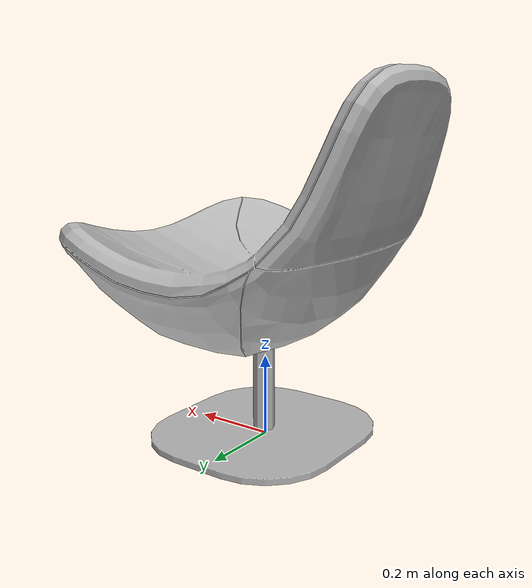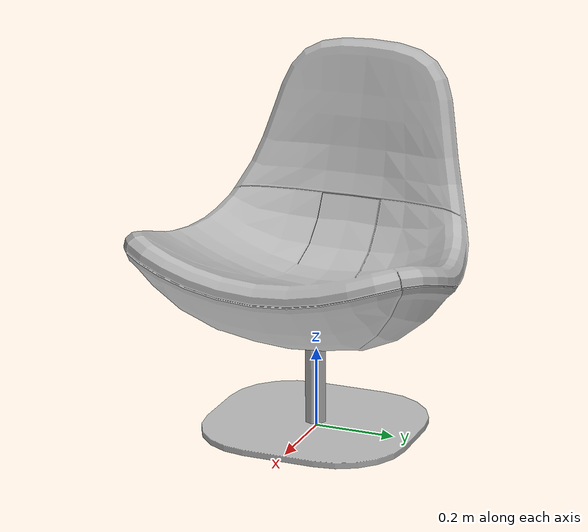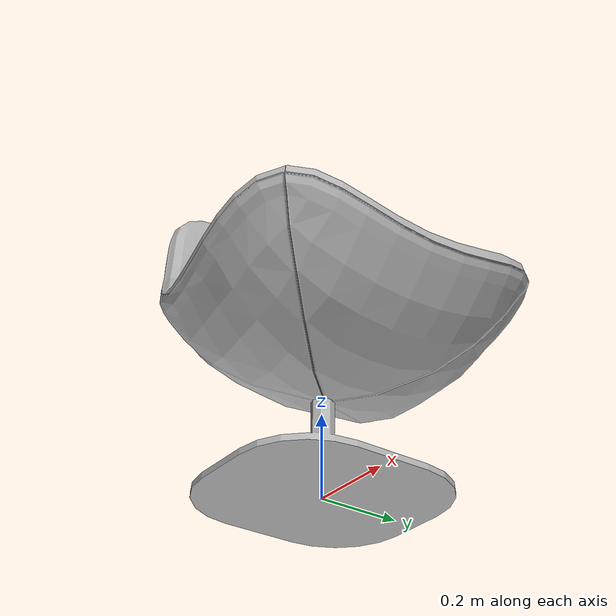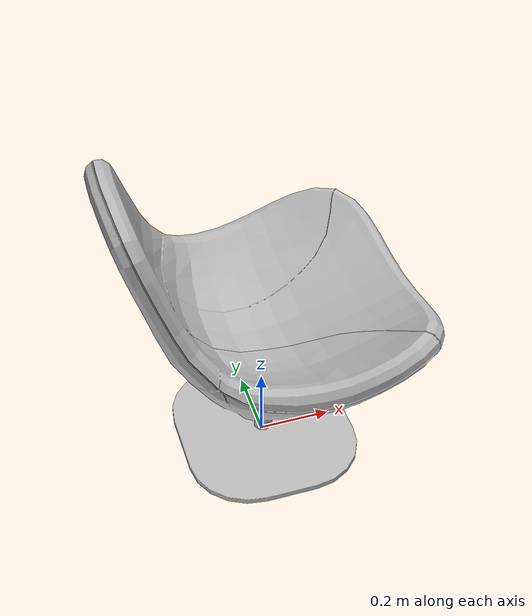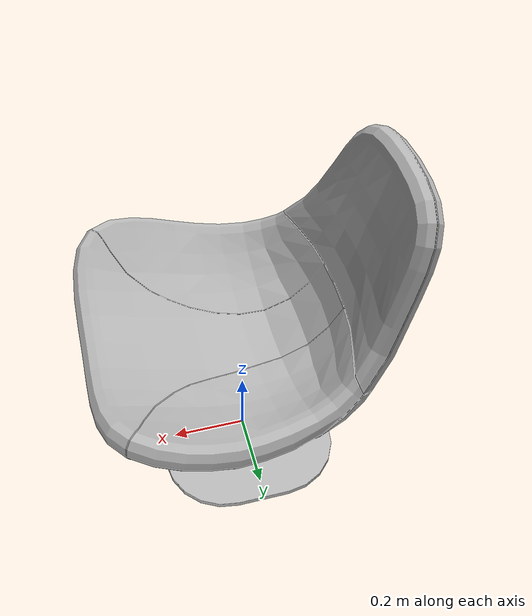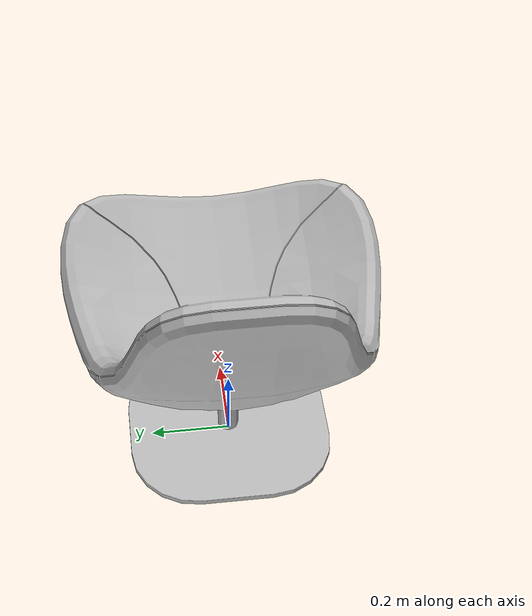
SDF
<?xml version='1.0'?>
<sdf version='1.4'>
  <model name='s__814'>
    <pose>0 0 0 0 0 0</pose>
    <static>true</static>
    <link name='link'>
      <collision name='collision'>
        <pose>0 0 0 0 0 0</pose>
        <geometry>
          <box>
            <size>0.79 0.78 2</size>
          </box>
        </geometry>
      </collision>
      <visual name='visual'>
        <pose>0 0 0 0 0 0</pose>
        <geometry>
          <mesh><uri>model://s__814/s__814.dae</uri></mesh>
        </geometry>
      </visual>
    </link>
  </model>
</sdf>
